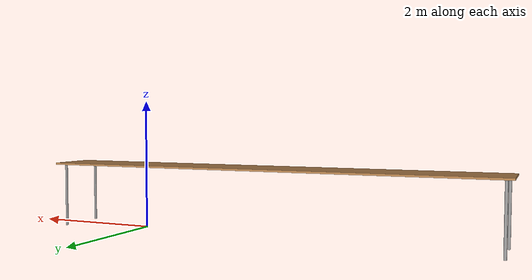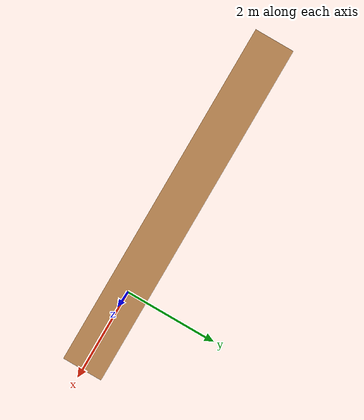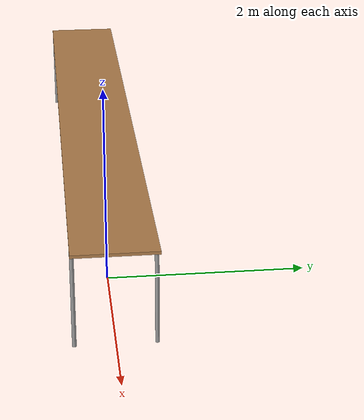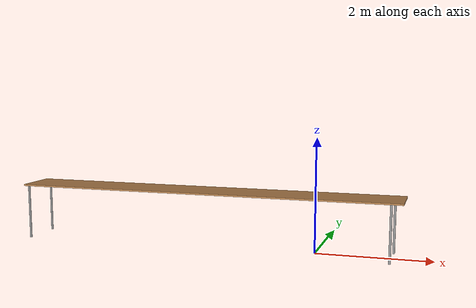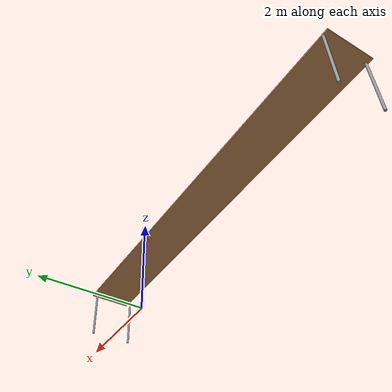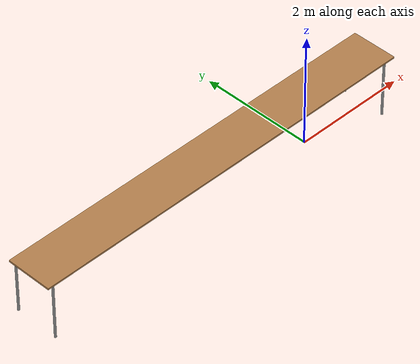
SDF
<?xml version="1.0" ?>
<sdf version="1.5">
  <model name="table">
    <static>true</static>
    <link name="link">
      <collision name="surface">
        <pose>-2 0 1.0 0 0 0</pose>
        <geometry>
          <box>
            <size>7.0 0.8 0.03</size>
          </box>
        </geometry>
        <surface>
          <friction>
            <ode>
              <mu>0.6</mu>
              <mu2>0.6</mu2>
            </ode>
          </friction>
        </surface>
      </collision>
      <visual name="visual1">
        <pose>-2 0 1.0 0 0 0</pose>
        <geometry>
          <box>
            <size>7.0 0.8 0.03</size>
          </box>
        </geometry>
        <material>
          <script>
            <uri>file://media/materials/scripts/gazebo.material</uri>
            <name>Gazebo/Wood</name>
          </script>
        </material>
      </visual>
      <collision name="front_left_leg">
        <pose>-5.4 0.38 0.5 0 0 0</pose>
        <geometry>
          <cylinder>
            <radius>0.02</radius>
            <length>1.0</length>
          </cylinder>
        </geometry>
      </collision>
      <visual name="front_left_leg">
        <pose>-5.4 0.38 0.5 0 0 0</pose>
        <geometry>
          <cylinder>
            <radius>0.02</radius>
            <length>1.0</length>
          </cylinder>
        </geometry>
        <material>
          <script>
            <uri>file://media/materials/scripts/gazebo.material</uri>
            <name>Gazebo/Grey</name>
          </script>
        </material>
      </visual>
      <collision name="front_right_leg">
        <pose>-5.4 -0.38 0.5 0 0 0</pose>
        <geometry>
          <cylinder>
            <radius>0.02</radius>
            <length>1.0</length>
          </cylinder>
        </geometry>
      </collision>
      <visual name="front_right_leg">
        <pose>-5.4 -0.38 0.5 0 0 0</pose>
        <geometry>
          <cylinder>
            <radius>0.02</radius>
            <length>1.0</length>
          </cylinder>
        </geometry>
        <material>
          <script>
            <uri>file://media/materials/scripts/gazebo.material</uri>
            <name>Gazebo/Grey</name>
          </script>
        </material>
      </visual>
      <collision name="back_right_leg">
        <pose>1.3 -0.38 0.5 0 0 0</pose>
        <geometry>
          <cylinder>
            <radius>0.02</radius>
            <length>1.0</length>
          </cylinder>
        </geometry>
      </collision>
      <visual name="back_right_leg">
        <pose>1.3 -0.38 0.5 0 0 0</pose>
        <geometry>
          <cylinder>
            <radius>0.02</radius>
            <length>1.0</length>
          </cylinder>
        </geometry>
        <material>
          <script>
            <uri>file://media/materials/scripts/gazebo.material</uri>
            <name>Gazebo/Grey</name>
          </script>
        </material>
      </visual>
      <collision name="back_left_leg">
        <pose>1.3 0.38 0.5 0 0 0</pose>
        <geometry>
          <cylinder>
            <radius>0.02</radius>
            <length>1.0</length>
          </cylinder>
        </geometry>
      </collision>
      <visual name="back_left_leg">
        <pose>1.3 0.38 0.5 0 0 0</pose>
        <geometry>
          <cylinder>
            <radius>0.02</radius>
            <length>1.0</length>
          </cylinder>
        </geometry>
        <material>
          <script>
            <uri>file://media/materials/scripts/gazebo.material</uri>
            <name>Gazebo/Grey</name>
          </script>
        </material>
      </visual>
    </link>
  </model>
</sdf>
